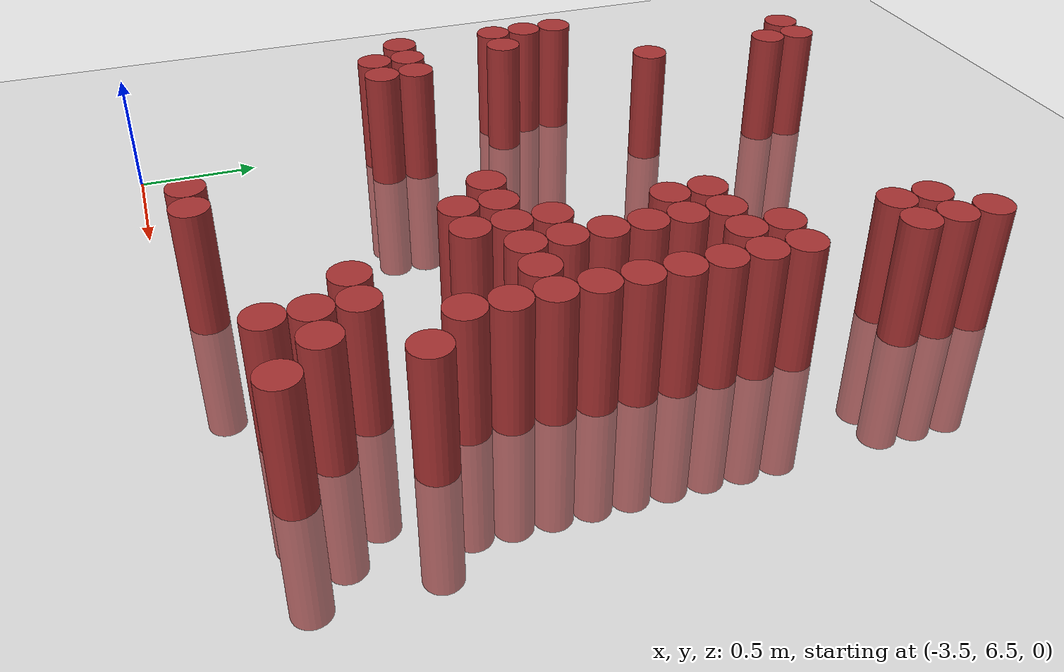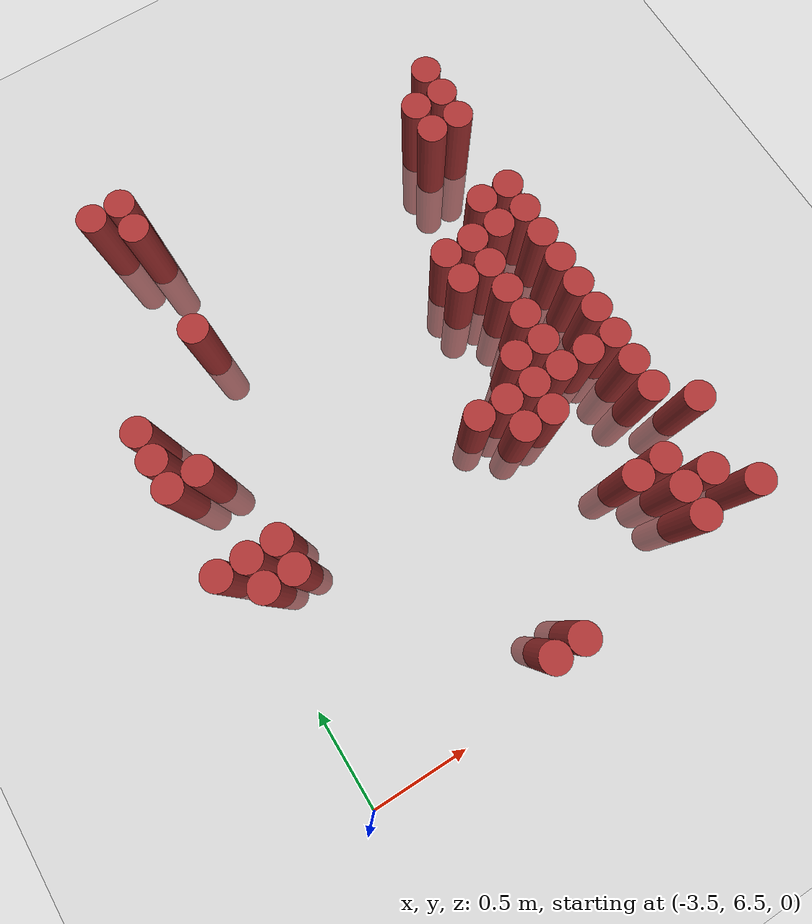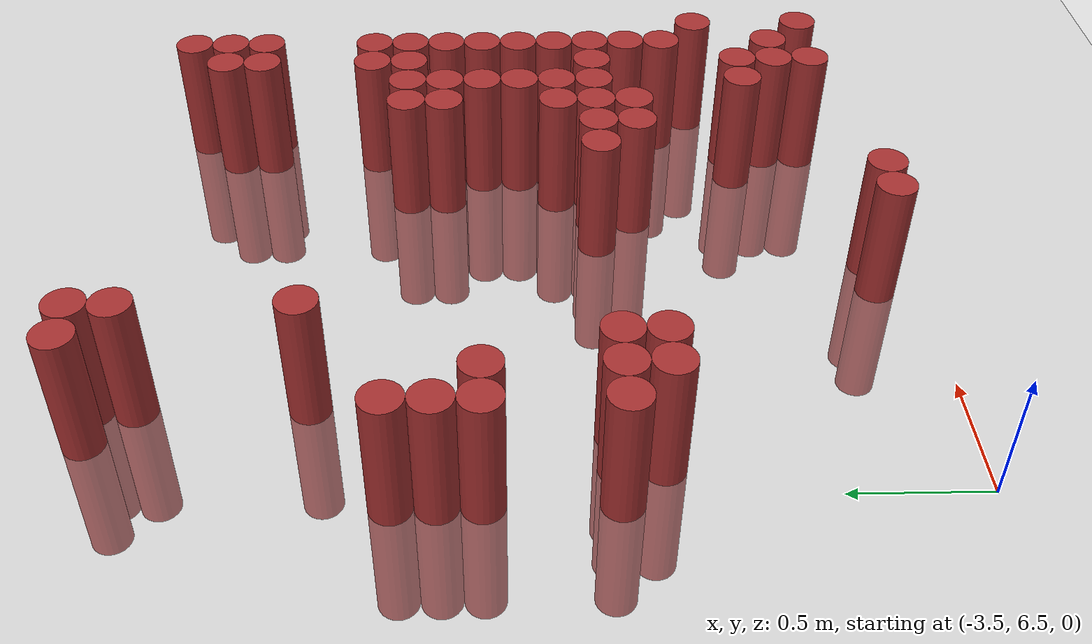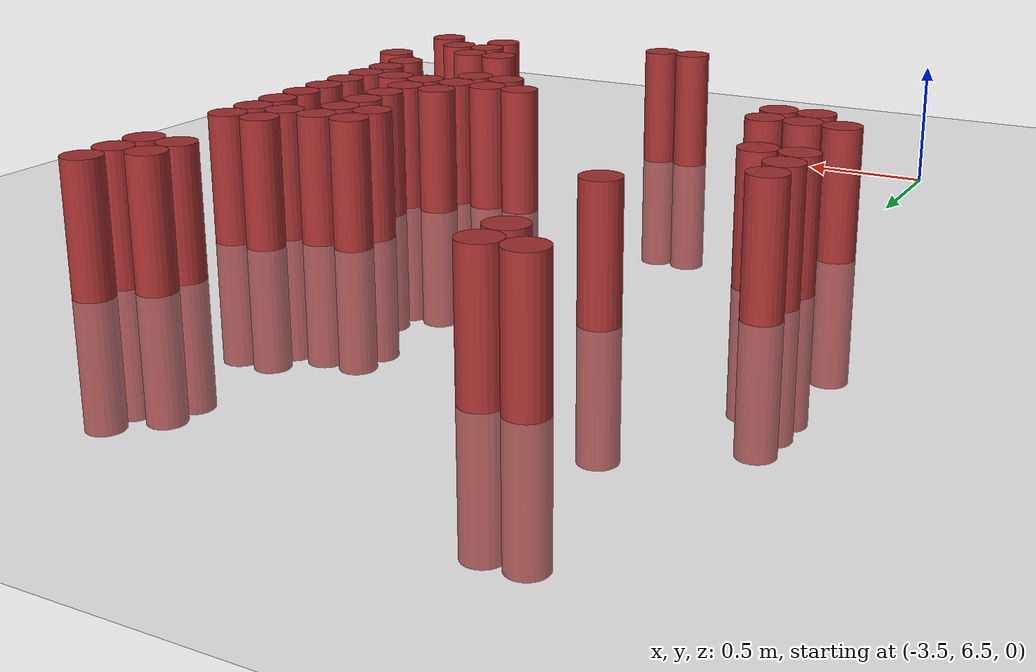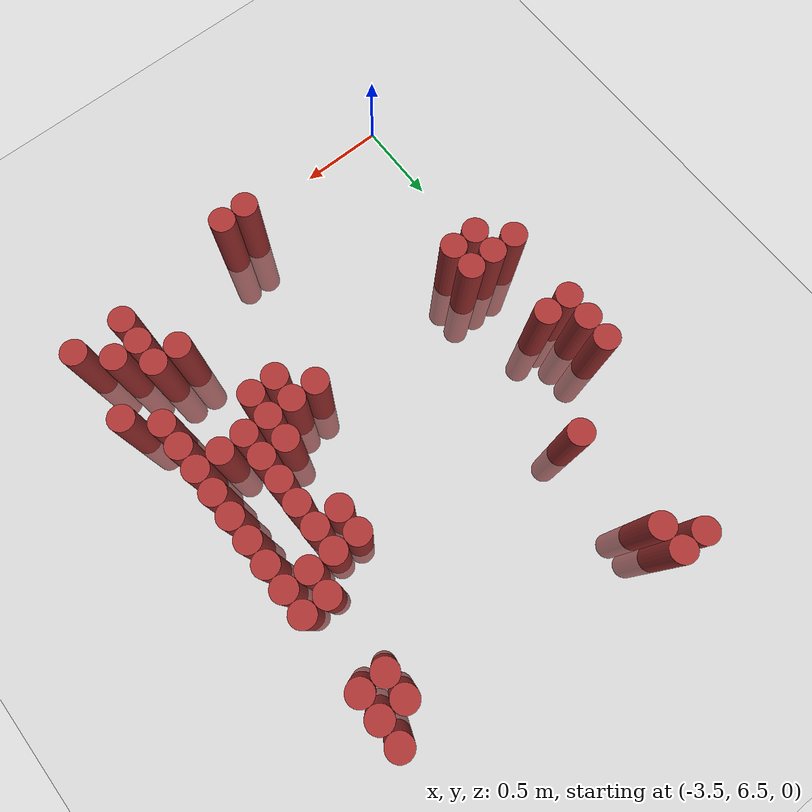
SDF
<sdf version="1.6">
 <world name="default">
  <model name="ground_plane">
   <static>1</static>
   <link name="link">
    <collision name="collision">
     <geometry><plane><normal>0 0 1</normal><size>100 100</size></plane></geometry>
     <surface><friction><ode><mu>100</mu><mu2>50</mu2></ode></friction></surface>
    </collision>
    <visual name="visual">
     <cast_shadows>0</cast_shadows>
     <geometry><plane><normal>0 0 1</normal><size>100 100</size></plane></geometry>
     <material>
      <script><uri>file://media/materials/scripts/gazebo.material</uri><name>Gazebo/Grey</name></script>
     </material>
    </visual>
   </link>
  </model>
  <model name="unit_cylinder_161">
   <static>1</static>
   <pose>-3.525000 7.725000 0.000000 0.000000 0.000000 0.000000</pose>
   <link name="link">
    <inertial>
     <mass>1</mass>
     <inertia><ixx>0.145833</ixx><ixy>0</ixy><ixz>0</ixz><iyy>0.145833</iyy><iyz>0</iyz><izz>0.125</izz></inertia>
    </inertial>
    <collision name="collision">
     <geometry><cylinder><radius>0.075000</radius><length>1</length></cylinder></geometry>
    </collision>
    <visual name="visual">
     <geometry><cylinder><radius>0.075000</radius><length>1</length></cylinder></geometry>
     <material>
      <ambient>0.648000 0.192000 0.192000 1</ambient>
      <diffuse>0.648000 0.192000 0.192000 1</diffuse>
     </material>
     <material>
      <script><name>Gazebo/Grey</name><uri>file://media/materials/scripts/gazebo.material</uri></script>
     </material>
    </visual>
   </link>
  </model>
  <model name="unit_cylinder_162">
   <static>1</static>
   <pose>-3.525000 8.175000 0.000000 0.000000 0.000000 0.000000</pose>
   <link name="link">
    <inertial>
     <mass>1</mass>
     <inertia><ixx>0.145833</ixx><ixy>0</ixy><ixz>0</ixz><iyy>0.145833</iyy><iyz>0</iyz><izz>0.125</izz></inertia>
    </inertial>
    <collision name="collision">
     <geometry><cylinder><radius>0.075000</radius><length>1</length></cylinder></geometry>
    </collision>
    <visual name="visual">
     <geometry><cylinder><radius>0.075000</radius><length>1</length></cylinder></geometry>
     <material>
      <ambient>0.648000 0.192000 0.192000 1</ambient>
      <diffuse>0.648000 0.192000 0.192000 1</diffuse>
     </material>
     <material>
      <script><name>Gazebo/Grey</name><uri>file://media/materials/scripts/gazebo.material</uri></script>
     </material>
    </visual>
   </link>
  </model>
  <model name="unit_cylinder_163">
   <static>1</static>
   <pose>-3.525000 8.325000 0.000000 0.000000 0.000000 0.000000</pose>
   <link name="link">
    <inertial>
     <mass>1</mass>
     <inertia><ixx>0.145833</ixx><ixy>0</ixy><ixz>0</ixz><iyy>0.145833</iyy><iyz>0</iyz><izz>0.125</izz></inertia>
    </inertial>
    <collision name="collision">
     <geometry><cylinder><radius>0.075000</radius><length>1</length></cylinder></geometry>
    </collision>
    <visual name="visual">
     <geometry><cylinder><radius>0.075000</radius><length>1</length></cylinder></geometry>
     <material>
      <ambient>0.648000 0.192000 0.192000 1</ambient>
      <diffuse>0.648000 0.192000 0.192000 1</diffuse>
     </material>
     <material>
      <script><name>Gazebo/Grey</name><uri>file://media/materials/scripts/gazebo.material</uri></script>
     </material>
    </visual>
   </link>
  </model>
  <model name="unit_cylinder_164">
   <static>1</static>
   <pose>-3.525000 8.475000 0.000000 0.000000 0.000000 0.000000</pose>
   <link name="link">
    <inertial>
     <mass>1</mass>
     <inertia><ixx>0.145833</ixx><ixy>0</ixy><ixz>0</ixz><iyy>0.145833</iyy><iyz>0</iyz><izz>0.125</izz></inertia>
    </inertial>
    <collision name="collision">
     <geometry><cylinder><radius>0.075000</radius><length>1</length></cylinder></geometry>
    </collision>
    <visual name="visual">
     <geometry><cylinder><radius>0.075000</radius><length>1</length></cylinder></geometry>
     <material>
      <ambient>0.648000 0.192000 0.192000 1</ambient>
      <diffuse>0.648000 0.192000 0.192000 1</diffuse>
     </material>
     <material>
      <script><name>Gazebo/Grey</name><uri>file://media/materials/scripts/gazebo.material</uri></script>
     </material>
    </visual>
   </link>
  </model>
  <model name="unit_cylinder_165">
   <static>1</static>
   <pose>-3.375000 7.575000 0.000000 0.000000 0.000000 0.000000</pose>
   <link name="link">
    <inertial>
     <mass>1</mass>
     <inertia><ixx>0.145833</ixx><ixy>0</ixy><ixz>0</ixz><iyy>0.145833</iyy><iyz>0</iyz><izz>0.125</izz></inertia>
    </inertial>
    <collision name="collision">
     <geometry><cylinder><radius>0.075000</radius><length>1</length></cylinder></geometry>
    </collision>
    <visual name="visual">
     <geometry><cylinder><radius>0.075000</radius><length>1</length></cylinder></geometry>
     <material>
      <ambient>0.648000 0.192000 0.192000 1</ambient>
      <diffuse>0.648000 0.192000 0.192000 1</diffuse>
     </material>
     <material>
      <script><name>Gazebo/Grey</name><uri>file://media/materials/scripts/gazebo.material</uri></script>
     </material>
    </visual>
   </link>
  </model>
  <model name="unit_cylinder_166">
   <static>1</static>
   <pose>-3.375000 7.725000 0.000000 0.000000 0.000000 0.000000</pose>
   <link name="link">
    <inertial>
     <mass>1</mass>
     <inertia><ixx>0.145833</ixx><ixy>0</ixy><ixz>0</ixz><iyy>0.145833</iyy><iyz>0</iyz><izz>0.125</izz></inertia>
    </inertial>
    <collision name="collision">
     <geometry><cylinder><radius>0.075000</radius><length>1</length></cylinder></geometry>
    </collision>
    <visual name="visual">
     <geometry><cylinder><radius>0.075000</radius><length>1</length></cylinder></geometry>
     <material>
      <ambient>0.648000 0.192000 0.192000 1</ambient>
      <diffuse>0.648000 0.192000 0.192000 1</diffuse>
     </material>
     <material>
      <script><name>Gazebo/Grey</name><uri>file://media/materials/scripts/gazebo.material</uri></script>
     </material>
    </visual>
   </link>
  </model>
  <model name="unit_cylinder_167">
   <static>1</static>
   <pose>-3.375000 8.175000 0.000000 0.000000 0.000000 0.000000</pose>
   <link name="link">
    <inertial>
     <mass>1</mass>
     <inertia><ixx>0.145833</ixx><ixy>0</ixy><ixz>0</ixz><iyy>0.145833</iyy><iyz>0</iyz><izz>0.125</izz></inertia>
    </inertial>
    <collision name="collision">
     <geometry><cylinder><radius>0.075000</radius><length>1</length></cylinder></geometry>
    </collision>
    <visual name="visual">
     <geometry><cylinder><radius>0.075000</radius><length>1</length></cylinder></geometry>
     <material>
      <ambient>0.648000 0.192000 0.192000 1</ambient>
      <diffuse>0.648000 0.192000 0.192000 1</diffuse>
     </material>
     <material>
      <script><name>Gazebo/Grey</name><uri>file://media/materials/scripts/gazebo.material</uri></script>
     </material>
    </visual>
   </link>
  </model>
  <model name="unit_cylinder_169">
   <static>1</static>
   <pose>-3.225000 7.575000 0.000000 0.000000 0.000000 0.000000</pose>
   <link name="link">
    <inertial>
     <mass>1</mass>
     <inertia><ixx>0.145833</ixx><ixy>0</ixy><ixz>0</ixz><iyy>0.145833</iyy><iyz>0</iyz><izz>0.125</izz></inertia>
    </inertial>
    <collision name="collision">
     <geometry><cylinder><radius>0.075000</radius><length>1</length></cylinder></geometry>
    </collision>
    <visual name="visual">
     <geometry><cylinder><radius>0.075000</radius><length>1</length></cylinder></geometry>
     <material>
      <ambient>0.648000 0.192000 0.192000 1</ambient>
      <diffuse>0.648000 0.192000 0.192000 1</diffuse>
     </material>
     <material>
      <script><name>Gazebo/Grey</name><uri>file://media/materials/scripts/gazebo.material</uri></script>
     </material>
    </visual>
   </link>
  </model>
  <model name="unit_cylinder_170">
   <static>1</static>
   <pose>-3.225000 7.725000 0.000000 0.000000 0.000000 0.000000</pose>
   <link name="link">
    <inertial>
     <mass>1</mass>
     <inertia><ixx>0.145833</ixx><ixy>0</ixy><ixz>0</ixz><iyy>0.145833</iyy><iyz>0</iyz><izz>0.125</izz></inertia>
    </inertial>
    <collision name="collision">
     <geometry><cylinder><radius>0.075000</radius><length>1</length></cylinder></geometry>
    </collision>
    <visual name="visual">
     <geometry><cylinder><radius>0.075000</radius><length>1</length></cylinder></geometry>
     <material>
      <ambient>0.648000 0.192000 0.192000 1</ambient>
      <diffuse>0.648000 0.192000 0.192000 1</diffuse>
     </material>
     <material>
      <script><name>Gazebo/Grey</name><uri>file://media/materials/scripts/gazebo.material</uri></script>
     </material>
    </visual>
   </link>
  </model>
  <model name="unit_cylinder_171">
   <static>1</static>
   <pose>-3.225000 9.525000 0.000000 0.000000 0.000000 0.000000</pose>
   <link name="link">
    <inertial>
     <mass>1</mass>
     <inertia><ixx>0.145833</ixx><ixy>0</ixy><ixz>0</ixz><iyy>0.145833</iyy><iyz>0</iyz><izz>0.125</izz></inertia>
    </inertial>
    <collision name="collision">
     <geometry><cylinder><radius>0.075000</radius><length>1</length></cylinder></geometry>
    </collision>
    <visual name="visual">
     <geometry><cylinder><radius>0.075000</radius><length>1</length></cylinder></geometry>
     <material>
      <ambient>0.648000 0.192000 0.192000 1</ambient>
      <diffuse>0.648000 0.192000 0.192000 1</diffuse>
     </material>
     <material>
      <script><name>Gazebo/Grey</name><uri>file://media/materials/scripts/gazebo.material</uri></script>
     </material>
    </visual>
   </link>
  </model>
  <model name="unit_cylinder_174">
   <static>1</static>
   <pose>-3.075000 8.775000 0.000000 0.000000 0.000000 0.000000</pose>
   <link name="link">
    <inertial>
     <mass>1</mass>
     <inertia><ixx>0.145833</ixx><ixy>0</ixy><ixz>0</ixz><iyy>0.145833</iyy><iyz>0</iyz><izz>0.125</izz></inertia>
    </inertial>
    <collision name="collision">
     <geometry><cylinder><radius>0.075000</radius><length>1</length></cylinder></geometry>
    </collision>
    <visual name="visual">
     <geometry><cylinder><radius>0.075000</radius><length>1</length></cylinder></geometry>
     <material>
      <ambient>0.648000 0.192000 0.192000 1</ambient>
      <diffuse>0.648000 0.192000 0.192000 1</diffuse>
     </material>
     <material>
      <script><name>Gazebo/Grey</name><uri>file://media/materials/scripts/gazebo.material</uri></script>
     </material>
    </visual>
   </link>
  </model>
  <model name="unit_cylinder_175">
   <static>1</static>
   <pose>-3.075000 9.375000 0.000000 0.000000 0.000000 0.000000</pose>
   <link name="link">
    <inertial>
     <mass>1</mass>
     <inertia><ixx>0.145833</ixx><ixy>0</ixy><ixz>0</ixz><iyy>0.145833</iyy><iyz>0</iyz><izz>0.125</izz></inertia>
    </inertial>
    <collision name="collision">
     <geometry><cylinder><radius>0.075000</radius><length>1</length></cylinder></geometry>
    </collision>
    <visual name="visual">
     <geometry><cylinder><radius>0.075000</radius><length>1</length></cylinder></geometry>
     <material>
      <ambient>0.648000 0.192000 0.192000 1</ambient>
      <diffuse>0.648000 0.192000 0.192000 1</diffuse>
     </material>
     <material>
      <script><name>Gazebo/Grey</name><uri>file://media/materials/scripts/gazebo.material</uri></script>
     </material>
    </visual>
   </link>
  </model>
  <model name="unit_cylinder_176">
   <static>1</static>
   <pose>-3.075000 9.525000 0.000000 0.000000 0.000000 0.000000</pose>
   <link name="link">
    <inertial>
     <mass>1</mass>
     <inertia><ixx>0.145833</ixx><ixy>0</ixy><ixz>0</ixz><iyy>0.145833</iyy><iyz>0</iyz><izz>0.125</izz></inertia>
    </inertial>
    <collision name="collision">
     <geometry><cylinder><radius>0.075000</radius><length>1</length></cylinder></geometry>
    </collision>
    <visual name="visual">
     <geometry><cylinder><radius>0.075000</radius><length>1</length></cylinder></geometry>
     <material>
      <ambient>0.648000 0.192000 0.192000 1</ambient>
      <diffuse>0.648000 0.192000 0.192000 1</diffuse>
     </material>
     <material>
      <script><name>Gazebo/Grey</name><uri>file://media/materials/scripts/gazebo.material</uri></script>
     </material>
    </visual>
   </link>
  </model>
  <model name="unit_cylinder_188">
   <static>1</static>
   <pose>-2.475000 6.675000 0.000000 0.000000 0.000000 0.000000</pose>
   <link name="link">
    <inertial>
     <mass>1</mass>
     <inertia><ixx>0.145833</ixx><ixy>0</ixy><ixz>0</ixz><iyy>0.145833</iyy><iyz>0</iyz><izz>0.125</izz></inertia>
    </inertial>
    <collision name="collision">
     <geometry><cylinder><radius>0.075000</radius><length>1</length></cylinder></geometry>
    </collision>
    <visual name="visual">
     <geometry><cylinder><radius>0.075000</radius><length>1</length></cylinder></geometry>
     <material>
      <ambient>0.648000 0.192000 0.192000 1</ambient>
      <diffuse>0.648000 0.192000 0.192000 1</diffuse>
     </material>
     <material>
      <script><name>Gazebo/Grey</name><uri>file://media/materials/scripts/gazebo.material</uri></script>
     </material>
    </visual>
   </link>
  </model>
  <model name="unit_cylinder_189">
   <static>1</static>
   <pose>-2.325000 6.675000 0.000000 0.000000 0.000000 0.000000</pose>
   <link name="link">
    <inertial>
     <mass>1</mass>
     <inertia><ixx>0.145833</ixx><ixy>0</ixy><ixz>0</ixz><iyy>0.145833</iyy><iyz>0</iyz><izz>0.125</izz></inertia>
    </inertial>
    <collision name="collision">
     <geometry><cylinder><radius>0.075000</radius><length>1</length></cylinder></geometry>
    </collision>
    <visual name="visual">
     <geometry><cylinder><radius>0.075000</radius><length>1</length></cylinder></geometry>
     <material>
      <ambient>0.648000 0.192000 0.192000 1</ambient>
      <diffuse>0.648000 0.192000 0.192000 1</diffuse>
     </material>
     <material>
      <script><name>Gazebo/Grey</name><uri>file://media/materials/scripts/gazebo.material</uri></script>
     </material>
    </visual>
   </link>
  </model>
  <model name="unit_cylinder_190">
   <static>1</static>
   <pose>-2.175000 7.725000 0.000000 0.000000 0.000000 0.000000</pose>
   <link name="link">
    <inertial>
     <mass>1</mass>
     <inertia><ixx>0.145833</ixx><ixy>0</ixy><ixz>0</ixz><iyy>0.145833</iyy><iyz>0</iyz><izz>0.125</izz></inertia>
    </inertial>
    <collision name="collision">
     <geometry><cylinder><radius>0.075000</radius><length>1</length></cylinder></geometry>
    </collision>
    <visual name="visual">
     <geometry><cylinder><radius>0.075000</radius><length>1</length></cylinder></geometry>
     <material>
      <ambient>0.648000 0.192000 0.192000 1</ambient>
      <diffuse>0.648000 0.192000 0.192000 1</diffuse>
     </material>
     <material>
      <script><name>Gazebo/Grey</name><uri>file://media/materials/scripts/gazebo.material</uri></script>
     </material>
    </visual>
   </link>
  </model>
  <model name="unit_cylinder_192">
   <static>1</static>
   <pose>-2.025000 7.575000 0.000000 0.000000 0.000000 0.000000</pose>
   <link name="link">
    <inertial>
     <mass>1</mass>
     <inertia><ixx>0.145833</ixx><ixy>0</ixy><ixz>0</ixz><iyy>0.145833</iyy><iyz>0</iyz><izz>0.125</izz></inertia>
    </inertial>
    <collision name="collision">
     <geometry><cylinder><radius>0.075000</radius><length>1</length></cylinder></geometry>
    </collision>
    <visual name="visual">
     <geometry><cylinder><radius>0.075000</radius><length>1</length></cylinder></geometry>
     <material>
      <ambient>0.648000 0.192000 0.192000 1</ambient>
      <diffuse>0.648000 0.192000 0.192000 1</diffuse>
     </material>
     <material>
      <script><name>Gazebo/Grey</name><uri>file://media/materials/scripts/gazebo.material</uri></script>
     </material>
    </visual>
   </link>
  </model>
  <model name="unit_cylinder_193">
   <static>1</static>
   <pose>-2.025000 7.725000 0.000000 0.000000 0.000000 0.000000</pose>
   <link name="link">
    <inertial>
     <mass>1</mass>
     <inertia><ixx>0.145833</ixx><ixy>0</ixy><ixz>0</ixz><iyy>0.145833</iyy><iyz>0</iyz><izz>0.125</izz></inertia>
    </inertial>
    <collision name="collision">
     <geometry><cylinder><radius>0.075000</radius><length>1</length></cylinder></geometry>
    </collision>
    <visual name="visual">
     <geometry><cylinder><radius>0.075000</radius><length>1</length></cylinder></geometry>
     <material>
      <ambient>0.648000 0.192000 0.192000 1</ambient>
      <diffuse>0.648000 0.192000 0.192000 1</diffuse>
     </material>
     <material>
      <script><name>Gazebo/Grey</name><uri>file://media/materials/scripts/gazebo.material</uri></script>
     </material>
    </visual>
   </link>
  </model>
  <model name="unit_cylinder_196">
   <static>1</static>
   <pose>-1.875000 7.575000 0.000000 0.000000 0.000000 0.000000</pose>
   <link name="link">
    <inertial>
     <mass>1</mass>
     <inertia><ixx>0.145833</ixx><ixy>0</ixy><ixz>0</ixz><iyy>0.145833</iyy><iyz>0</iyz><izz>0.125</izz></inertia>
    </inertial>
    <collision name="collision">
     <geometry><cylinder><radius>0.075000</radius><length>1</length></cylinder></geometry>
    </collision>
    <visual name="visual">
     <geometry><cylinder><radius>0.075000</radius><length>1</length></cylinder></geometry>
     <material>
      <ambient>0.648000 0.192000 0.192000 1</ambient>
      <diffuse>0.648000 0.192000 0.192000 1</diffuse>
     </material>
     <material>
      <script><name>Gazebo/Grey</name><uri>file://media/materials/scripts/gazebo.material</uri></script>
     </material>
    </visual>
   </link>
  </model>
  <model name="unit_cylinder_197">
   <static>1</static>
   <pose>-1.875000 7.725000 0.000000 0.000000 0.000000 0.000000</pose>
   <link name="link">
    <inertial>
     <mass>1</mass>
     <inertia><ixx>0.145833</ixx><ixy>0</ixy><ixz>0</ixz><iyy>0.145833</iyy><iyz>0</iyz><izz>0.125</izz></inertia>
    </inertial>
    <collision name="collision">
     <geometry><cylinder><radius>0.075000</radius><length>1</length></cylinder></geometry>
    </collision>
    <visual name="visual">
     <geometry><cylinder><radius>0.075000</radius><length>1</length></cylinder></geometry>
     <material>
      <ambient>0.648000 0.192000 0.192000 1</ambient>
      <diffuse>0.648000 0.192000 0.192000 1</diffuse>
     </material>
     <material>
      <script><name>Gazebo/Grey</name><uri>file://media/materials/scripts/gazebo.material</uri></script>
     </material>
    </visual>
   </link>
  </model>
  <model name="unit_cylinder_198">
   <static>1</static>
   <pose>-1.875000 7.875000 0.000000 0.000000 0.000000 0.000000</pose>
   <link name="link">
    <inertial>
     <mass>1</mass>
     <inertia><ixx>0.145833</ixx><ixy>0</ixy><ixz>0</ixz><iyy>0.145833</iyy><iyz>0</iyz><izz>0.125</izz></inertia>
    </inertial>
    <collision name="collision">
     <geometry><cylinder><radius>0.075000</radius><length>1</length></cylinder></geometry>
    </collision>
    <visual name="visual">
     <geometry><cylinder><radius>0.075000</radius><length>1</length></cylinder></geometry>
     <material>
      <ambient>0.648000 0.192000 0.192000 1</ambient>
      <diffuse>0.648000 0.192000 0.192000 1</diffuse>
     </material>
     <material>
      <script><name>Gazebo/Grey</name><uri>file://media/materials/scripts/gazebo.material</uri></script>
     </material>
    </visual>
   </link>
  </model>
  <model name="unit_cylinder_199">
   <static>1</static>
   <pose>-1.875000 8.325000 0.000000 0.000000 0.000000 0.000000</pose>
   <link name="link">
    <inertial>
     <mass>1</mass>
     <inertia><ixx>0.145833</ixx><ixy>0</ixy><ixz>0</ixz><iyy>0.145833</iyy><iyz>0</iyz><izz>0.125</izz></inertia>
    </inertial>
    <collision name="collision">
     <geometry><cylinder><radius>0.075000</radius><length>1</length></cylinder></geometry>
    </collision>
    <visual name="visual">
     <geometry><cylinder><radius>0.075000</radius><length>1</length></cylinder></geometry>
     <material>
      <ambient>0.648000 0.192000 0.192000 1</ambient>
      <diffuse>0.648000 0.192000 0.192000 1</diffuse>
     </material>
     <material>
      <script><name>Gazebo/Grey</name><uri>file://media/materials/scripts/gazebo.material</uri></script>
     </material>
    </visual>
   </link>
  </model>
  <model name="unit_cylinder_200">
   <static>1</static>
   <pose>-1.875000 8.475000 0.000000 0.000000 0.000000 0.000000</pose>
   <link name="link">
    <inertial>
     <mass>1</mass>
     <inertia><ixx>0.145833</ixx><ixy>0</ixy><ixz>0</ixz><iyy>0.145833</iyy><iyz>0</iyz><izz>0.125</izz></inertia>
    </inertial>
    <collision name="collision">
     <geometry><cylinder><radius>0.075000</radius><length>1</length></cylinder></geometry>
    </collision>
    <visual name="visual">
     <geometry><cylinder><radius>0.075000</radius><length>1</length></cylinder></geometry>
     <material>
      <ambient>0.648000 0.192000 0.192000 1</ambient>
      <diffuse>0.648000 0.192000 0.192000 1</diffuse>
     </material>
     <material>
      <script><name>Gazebo/Grey</name><uri>file://media/materials/scripts/gazebo.material</uri></script>
     </material>
    </visual>
   </link>
  </model>
  <model name="unit_cylinder_202">
   <static>1</static>
   <pose>-1.725000 7.125000 0.000000 0.000000 0.000000 0.000000</pose>
   <link name="link">
    <inertial>
     <mass>1</mass>
     <inertia><ixx>0.145833</ixx><ixy>0</ixy><ixz>0</ixz><iyy>0.145833</iyy><iyz>0</iyz><izz>0.125</izz></inertia>
    </inertial>
    <collision name="collision">
     <geometry><cylinder><radius>0.075000</radius><length>1</length></cylinder></geometry>
    </collision>
    <visual name="visual">
     <geometry><cylinder><radius>0.075000</radius><length>1</length></cylinder></geometry>
     <material>
      <ambient>0.648000 0.192000 0.192000 1</ambient>
      <diffuse>0.648000 0.192000 0.192000 1</diffuse>
     </material>
     <material>
      <script><name>Gazebo/Grey</name><uri>file://media/materials/scripts/gazebo.material</uri></script>
     </material>
    </visual>
   </link>
  </model>
  <model name="unit_cylinder_203">
   <static>1</static>
   <pose>-1.725000 7.725000 0.000000 0.000000 0.000000 0.000000</pose>
   <link name="link">
    <inertial>
     <mass>1</mass>
     <inertia><ixx>0.145833</ixx><ixy>0</ixy><ixz>0</ixz><iyy>0.145833</iyy><iyz>0</iyz><izz>0.125</izz></inertia>
    </inertial>
    <collision name="collision">
     <geometry><cylinder><radius>0.075000</radius><length>1</length></cylinder></geometry>
    </collision>
    <visual name="visual">
     <geometry><cylinder><radius>0.075000</radius><length>1</length></cylinder></geometry>
     <material>
      <ambient>0.648000 0.192000 0.192000 1</ambient>
      <diffuse>0.648000 0.192000 0.192000 1</diffuse>
     </material>
     <material>
      <script><name>Gazebo/Grey</name><uri>file://media/materials/scripts/gazebo.material</uri></script>
     </material>
    </visual>
   </link>
  </model>
  <model name="unit_cylinder_204">
   <static>1</static>
   <pose>-1.725000 7.875000 0.000000 0.000000 0.000000 0.000000</pose>
   <link name="link">
    <inertial>
     <mass>1</mass>
     <inertia><ixx>0.145833</ixx><ixy>0</ixy><ixz>0</ixz><iyy>0.145833</iyy><iyz>0</iyz><izz>0.125</izz></inertia>
    </inertial>
    <collision name="collision">
     <geometry><cylinder><radius>0.075000</radius><length>1</length></cylinder></geometry>
    </collision>
    <visual name="visual">
     <geometry><cylinder><radius>0.075000</radius><length>1</length></cylinder></geometry>
     <material>
      <ambient>0.648000 0.192000 0.192000 1</ambient>
      <diffuse>0.648000 0.192000 0.192000 1</diffuse>
     </material>
     <material>
      <script><name>Gazebo/Grey</name><uri>file://media/materials/scripts/gazebo.material</uri></script>
     </material>
    </visual>
   </link>
  </model>
  <model name="unit_cylinder_205">
   <static>1</static>
   <pose>-1.725000 8.025000 0.000000 0.000000 0.000000 0.000000</pose>
   <link name="link">
    <inertial>
     <mass>1</mass>
     <inertia><ixx>0.145833</ixx><ixy>0</ixy><ixz>0</ixz><iyy>0.145833</iyy><iyz>0</iyz><izz>0.125</izz></inertia>
    </inertial>
    <collision name="collision">
     <geometry><cylinder><radius>0.075000</radius><length>1</length></cylinder></geometry>
    </collision>
    <visual name="visual">
     <geometry><cylinder><radius>0.075000</radius><length>1</length></cylinder></geometry>
     <material>
      <ambient>0.648000 0.192000 0.192000 1</ambient>
      <diffuse>0.648000 0.192000 0.192000 1</diffuse>
     </material>
     <material>
      <script><name>Gazebo/Grey</name><uri>file://media/materials/scripts/gazebo.material</uri></script>
     </material>
    </visual>
   </link>
  </model>
  <model name="unit_cylinder_206">
   <static>1</static>
   <pose>-1.725000 8.175000 0.000000 0.000000 0.000000 0.000000</pose>
   <link name="link">
    <inertial>
     <mass>1</mass>
     <inertia><ixx>0.145833</ixx><ixy>0</ixy><ixz>0</ixz><iyy>0.145833</iyy><iyz>0</iyz><izz>0.125</izz></inertia>
    </inertial>
    <collision name="collision">
     <geometry><cylinder><radius>0.075000</radius><length>1</length></cylinder></geometry>
    </collision>
    <visual name="visual">
     <geometry><cylinder><radius>0.075000</radius><length>1</length></cylinder></geometry>
     <material>
      <ambient>0.648000 0.192000 0.192000 1</ambient>
      <diffuse>0.648000 0.192000 0.192000 1</diffuse>
     </material>
     <material>
      <script><name>Gazebo/Grey</name><uri>file://media/materials/scripts/gazebo.material</uri></script>
     </material>
    </visual>
   </link>
  </model>
  <model name="unit_cylinder_207">
   <static>1</static>
   <pose>-1.725000 8.325000 0.000000 0.000000 0.000000 0.000000</pose>
   <link name="link">
    <inertial>
     <mass>1</mass>
     <inertia><ixx>0.145833</ixx><ixy>0</ixy><ixz>0</ixz><iyy>0.145833</iyy><iyz>0</iyz><izz>0.125</izz></inertia>
    </inertial>
    <collision name="collision">
     <geometry><cylinder><radius>0.075000</radius><length>1</length></cylinder></geometry>
    </collision>
    <visual name="visual">
     <geometry><cylinder><radius>0.075000</radius><length>1</length></cylinder></geometry>
     <material>
      <ambient>0.648000 0.192000 0.192000 1</ambient>
      <diffuse>0.648000 0.192000 0.192000 1</diffuse>
     </material>
     <material>
      <script><name>Gazebo/Grey</name><uri>file://media/materials/scripts/gazebo.material</uri></script>
     </material>
    </visual>
   </link>
  </model>
  <model name="unit_cylinder_208">
   <static>1</static>
   <pose>-1.725000 8.475000 0.000000 0.000000 0.000000 0.000000</pose>
   <link name="link">
    <inertial>
     <mass>1</mass>
     <inertia><ixx>0.145833</ixx><ixy>0</ixy><ixz>0</ixz><iyy>0.145833</iyy><iyz>0</iyz><izz>0.125</izz></inertia>
    </inertial>
    <collision name="collision">
     <geometry><cylinder><radius>0.075000</radius><length>1</length></cylinder></geometry>
    </collision>
    <visual name="visual">
     <geometry><cylinder><radius>0.075000</radius><length>1</length></cylinder></geometry>
     <material>
      <ambient>0.648000 0.192000 0.192000 1</ambient>
      <diffuse>0.648000 0.192000 0.192000 1</diffuse>
     </material>
     <material>
      <script><name>Gazebo/Grey</name><uri>file://media/materials/scripts/gazebo.material</uri></script>
     </material>
    </visual>
   </link>
  </model>
  <model name="unit_cylinder_215">
   <static>1</static>
   <pose>-1.575000 6.825000 0.000000 0.000000 0.000000 0.000000</pose>
   <link name="link">
    <inertial>
     <mass>1</mass>
     <inertia><ixx>0.145833</ixx><ixy>0</ixy><ixz>0</ixz><iyy>0.145833</iyy><iyz>0</iyz><izz>0.125</izz></inertia>
    </inertial>
    <collision name="collision">
     <geometry><cylinder><radius>0.075000</radius><length>1</length></cylinder></geometry>
    </collision>
    <visual name="visual">
     <geometry><cylinder><radius>0.075000</radius><length>1</length></cylinder></geometry>
     <material>
      <ambient>0.648000 0.192000 0.192000 1</ambient>
      <diffuse>0.648000 0.192000 0.192000 1</diffuse>
     </material>
     <material>
      <script><name>Gazebo/Grey</name><uri>file://media/materials/scripts/gazebo.material</uri></script>
     </material>
    </visual>
   </link>
  </model>
  <model name="unit_cylinder_216">
   <static>1</static>
   <pose>-1.575000 6.975000 0.000000 0.000000 0.000000 0.000000</pose>
   <link name="link">
    <inertial>
     <mass>1</mass>
     <inertia><ixx>0.145833</ixx><ixy>0</ixy><ixz>0</ixz><iyy>0.145833</iyy><iyz>0</iyz><izz>0.125</izz></inertia>
    </inertial>
    <collision name="collision">
     <geometry><cylinder><radius>0.075000</radius><length>1</length></cylinder></geometry>
    </collision>
    <visual name="visual">
     <geometry><cylinder><radius>0.075000</radius><length>1</length></cylinder></geometry>
     <material>
      <ambient>0.648000 0.192000 0.192000 1</ambient>
      <diffuse>0.648000 0.192000 0.192000 1</diffuse>
     </material>
     <material>
      <script><name>Gazebo/Grey</name><uri>file://media/materials/scripts/gazebo.material</uri></script>
     </material>
    </visual>
   </link>
  </model>
  <model name="unit_cylinder_217">
   <static>1</static>
   <pose>-1.575000 7.125000 0.000000 0.000000 0.000000 0.000000</pose>
   <link name="link">
    <inertial>
     <mass>1</mass>
     <inertia><ixx>0.145833</ixx><ixy>0</ixy><ixz>0</ixz><iyy>0.145833</iyy><iyz>0</iyz><izz>0.125</izz></inertia>
    </inertial>
    <collision name="collision">
     <geometry><cylinder><radius>0.075000</radius><length>1</length></cylinder></geometry>
    </collision>
    <visual name="visual">
     <geometry><cylinder><radius>0.075000</radius><length>1</length></cylinder></geometry>
     <material>
      <ambient>0.648000 0.192000 0.192000 1</ambient>
      <diffuse>0.648000 0.192000 0.192000 1</diffuse>
     </material>
     <material>
      <script><name>Gazebo/Grey</name><uri>file://media/materials/scripts/gazebo.material</uri></script>
     </material>
    </visual>
   </link>
  </model>
  <model name="unit_cylinder_218">
   <static>1</static>
   <pose>-1.575000 7.725000 0.000000 0.000000 0.000000 0.000000</pose>
   <link name="link">
    <inertial>
     <mass>1</mass>
     <inertia><ixx>0.145833</ixx><ixy>0</ixy><ixz>0</ixz><iyy>0.145833</iyy><iyz>0</iyz><izz>0.125</izz></inertia>
    </inertial>
    <collision name="collision">
     <geometry><cylinder><radius>0.075000</radius><length>1</length></cylinder></geometry>
    </collision>
    <visual name="visual">
     <geometry><cylinder><radius>0.075000</radius><length>1</length></cylinder></geometry>
     <material>
      <ambient>0.648000 0.192000 0.192000 1</ambient>
      <diffuse>0.648000 0.192000 0.192000 1</diffuse>
     </material>
     <material>
      <script><name>Gazebo/Grey</name><uri>file://media/materials/scripts/gazebo.material</uri></script>
     </material>
    </visual>
   </link>
  </model>
  <model name="unit_cylinder_219">
   <static>1</static>
   <pose>-1.575000 8.475000 0.000000 0.000000 0.000000 0.000000</pose>
   <link name="link">
    <inertial>
     <mass>1</mass>
     <inertia><ixx>0.145833</ixx><ixy>0</ixy><ixz>0</ixz><iyy>0.145833</iyy><iyz>0</iyz><izz>0.125</izz></inertia>
    </inertial>
    <collision name="collision">
     <geometry><cylinder><radius>0.075000</radius><length>1</length></cylinder></geometry>
    </collision>
    <visual name="visual">
     <geometry><cylinder><radius>0.075000</radius><length>1</length></cylinder></geometry>
     <material>
      <ambient>0.648000 0.192000 0.192000 1</ambient>
      <diffuse>0.648000 0.192000 0.192000 1</diffuse>
     </material>
     <material>
      <script><name>Gazebo/Grey</name><uri>file://media/materials/scripts/gazebo.material</uri></script>
     </material>
    </visual>
   </link>
  </model>
  <model name="unit_cylinder_220">
   <static>1</static>
   <pose>-1.575000 8.625000 0.000000 0.000000 0.000000 0.000000</pose>
   <link name="link">
    <inertial>
     <mass>1</mass>
     <inertia><ixx>0.145833</ixx><ixy>0</ixy><ixz>0</ixz><iyy>0.145833</iyy><iyz>0</iyz><izz>0.125</izz></inertia>
    </inertial>
    <collision name="collision">
     <geometry><cylinder><radius>0.075000</radius><length>1</length></cylinder></geometry>
    </collision>
    <visual name="visual">
     <geometry><cylinder><radius>0.075000</radius><length>1</length></cylinder></geometry>
     <material>
      <ambient>0.648000 0.192000 0.192000 1</ambient>
      <diffuse>0.648000 0.192000 0.192000 1</diffuse>
     </material>
     <material>
      <script><name>Gazebo/Grey</name><uri>file://media/materials/scripts/gazebo.material</uri></script>
     </material>
    </visual>
   </link>
  </model>
  <model name="unit_cylinder_221">
   <static>1</static>
   <pose>-1.575000 9.075000 0.000000 0.000000 0.000000 0.000000</pose>
   <link name="link">
    <inertial>
     <mass>1</mass>
     <inertia><ixx>0.145833</ixx><ixy>0</ixy><ixz>0</ixz><iyy>0.145833</iyy><iyz>0</iyz><izz>0.125</izz></inertia>
    </inertial>
    <collision name="collision">
     <geometry><cylinder><radius>0.075000</radius><length>1</length></cylinder></geometry>
    </collision>
    <visual name="visual">
     <geometry><cylinder><radius>0.075000</radius><length>1</length></cylinder></geometry>
     <material>
      <ambient>0.648000 0.192000 0.192000 1</ambient>
      <diffuse>0.648000 0.192000 0.192000 1</diffuse>
     </material>
     <material>
      <script><name>Gazebo/Grey</name><uri>file://media/materials/scripts/gazebo.material</uri></script>
     </material>
    </visual>
   </link>
  </model>
  <model name="unit_cylinder_222">
   <static>1</static>
   <pose>-1.575000 9.225000 0.000000 0.000000 0.000000 0.000000</pose>
   <link name="link">
    <inertial>
     <mass>1</mass>
     <inertia><ixx>0.145833</ixx><ixy>0</ixy><ixz>0</ixz><iyy>0.145833</iyy><iyz>0</iyz><izz>0.125</izz></inertia>
    </inertial>
    <collision name="collision">
     <geometry><cylinder><radius>0.075000</radius><length>1</length></cylinder></geometry>
    </collision>
    <visual name="visual">
     <geometry><cylinder><radius>0.075000</radius><length>1</length></cylinder></geometry>
     <material>
      <ambient>0.648000 0.192000 0.192000 1</ambient>
      <diffuse>0.648000 0.192000 0.192000 1</diffuse>
     </material>
     <material>
      <script><name>Gazebo/Grey</name><uri>file://media/materials/scripts/gazebo.material</uri></script>
     </material>
    </visual>
   </link>
  </model>
  <model name="unit_cylinder_229">
   <static>1</static>
   <pose>-1.425000 6.975000 0.000000 0.000000 0.000000 0.000000</pose>
   <link name="link">
    <inertial>
     <mass>1</mass>
     <inertia><ixx>0.145833</ixx><ixy>0</ixy><ixz>0</ixz><iyy>0.145833</iyy><iyz>0</iyz><izz>0.125</izz></inertia>
    </inertial>
    <collision name="collision">
     <geometry><cylinder><radius>0.075000</radius><length>1</length></cylinder></geometry>
    </collision>
    <visual name="visual">
     <geometry><cylinder><radius>0.075000</radius><length>1</length></cylinder></geometry>
     <material>
      <ambient>0.648000 0.192000 0.192000 1</ambient>
      <diffuse>0.648000 0.192000 0.192000 1</diffuse>
     </material>
     <material>
      <script><name>Gazebo/Grey</name><uri>file://media/materials/scripts/gazebo.material</uri></script>
     </material>
    </visual>
   </link>
  </model>
  <model name="unit_cylinder_230">
   <static>1</static>
   <pose>-1.425000 7.425000 0.000000 0.000000 0.000000 0.000000</pose>
   <link name="link">
    <inertial>
     <mass>1</mass>
     <inertia><ixx>0.145833</ixx><ixy>0</ixy><ixz>0</ixz><iyy>0.145833</iyy><iyz>0</iyz><izz>0.125</izz></inertia>
    </inertial>
    <collision name="collision">
     <geometry><cylinder><radius>0.075000</radius><length>1</length></cylinder></geometry>
    </collision>
    <visual name="visual">
     <geometry><cylinder><radius>0.075000</radius><length>1</length></cylinder></geometry>
     <material>
      <ambient>0.648000 0.192000 0.192000 1</ambient>
      <diffuse>0.648000 0.192000 0.192000 1</diffuse>
     </material>
     <material>
      <script><name>Gazebo/Grey</name><uri>file://media/materials/scripts/gazebo.material</uri></script>
     </material>
    </visual>
   </link>
  </model>
  <model name="unit_cylinder_231">
   <static>1</static>
   <pose>-1.425000 7.575000 0.000000 0.000000 0.000000 0.000000</pose>
   <link name="link">
    <inertial>
     <mass>1</mass>
     <inertia><ixx>0.145833</ixx><ixy>0</ixy><ixz>0</ixz><iyy>0.145833</iyy><iyz>0</iyz><izz>0.125</izz></inertia>
    </inertial>
    <collision name="collision">
     <geometry><cylinder><radius>0.075000</radius><length>1</length></cylinder></geometry>
    </collision>
    <visual name="visual">
     <geometry><cylinder><radius>0.075000</radius><length>1</length></cylinder></geometry>
     <material>
      <ambient>0.648000 0.192000 0.192000 1</ambient>
      <diffuse>0.648000 0.192000 0.192000 1</diffuse>
     </material>
     <material>
      <script><name>Gazebo/Grey</name><uri>file://media/materials/scripts/gazebo.material</uri></script>
     </material>
    </visual>
   </link>
  </model>
  <model name="unit_cylinder_232">
   <static>1</static>
   <pose>-1.425000 7.725000 0.000000 0.000000 0.000000 0.000000</pose>
   <link name="link">
    <inertial>
     <mass>1</mass>
     <inertia><ixx>0.145833</ixx><ixy>0</ixy><ixz>0</ixz><iyy>0.145833</iyy><iyz>0</iyz><izz>0.125</izz></inertia>
    </inertial>
    <collision name="collision">
     <geometry><cylinder><radius>0.075000</radius><length>1</length></cylinder></geometry>
    </collision>
    <visual name="visual">
     <geometry><cylinder><radius>0.075000</radius><length>1</length></cylinder></geometry>
     <material>
      <ambient>0.648000 0.192000 0.192000 1</ambient>
      <diffuse>0.648000 0.192000 0.192000 1</diffuse>
     </material>
     <material>
      <script><name>Gazebo/Grey</name><uri>file://media/materials/scripts/gazebo.material</uri></script>
     </material>
    </visual>
   </link>
  </model>
  <model name="unit_cylinder_233">
   <static>1</static>
   <pose>-1.425000 7.875000 0.000000 0.000000 0.000000 0.000000</pose>
   <link name="link">
    <inertial>
     <mass>1</mass>
     <inertia><ixx>0.145833</ixx><ixy>0</ixy><ixz>0</ixz><iyy>0.145833</iyy><iyz>0</iyz><izz>0.125</izz></inertia>
    </inertial>
    <collision name="collision">
     <geometry><cylinder><radius>0.075000</radius><length>1</length></cylinder></geometry>
    </collision>
    <visual name="visual">
     <geometry><cylinder><radius>0.075000</radius><length>1</length></cylinder></geometry>
     <material>
      <ambient>0.648000 0.192000 0.192000 1</ambient>
      <diffuse>0.648000 0.192000 0.192000 1</diffuse>
     </material>
     <material>
      <script><name>Gazebo/Grey</name><uri>file://media/materials/scripts/gazebo.material</uri></script>
     </material>
    </visual>
   </link>
  </model>
  <model name="unit_cylinder_234">
   <static>1</static>
   <pose>-1.425000 8.025000 0.000000 0.000000 0.000000 0.000000</pose>
   <link name="link">
    <inertial>
     <mass>1</mass>
     <inertia><ixx>0.145833</ixx><ixy>0</ixy><ixz>0</ixz><iyy>0.145833</iyy><iyz>0</iyz><izz>0.125</izz></inertia>
    </inertial>
    <collision name="collision">
     <geometry><cylinder><radius>0.075000</radius><length>1</length></cylinder></geometry>
    </collision>
    <visual name="visual">
     <geometry><cylinder><radius>0.075000</radius><length>1</length></cylinder></geometry>
     <material>
      <ambient>0.648000 0.192000 0.192000 1</ambient>
      <diffuse>0.648000 0.192000 0.192000 1</diffuse>
     </material>
     <material>
      <script><name>Gazebo/Grey</name><uri>file://media/materials/scripts/gazebo.material</uri></script>
     </material>
    </visual>
   </link>
  </model>
  <model name="unit_cylinder_235">
   <static>1</static>
   <pose>-1.425000 8.175000 0.000000 0.000000 0.000000 0.000000</pose>
   <link name="link">
    <inertial>
     <mass>1</mass>
     <inertia><ixx>0.145833</ixx><ixy>0</ixy><ixz>0</ixz><iyy>0.145833</iyy><iyz>0</iyz><izz>0.125</izz></inertia>
    </inertial>
    <collision name="collision">
     <geometry><cylinder><radius>0.075000</radius><length>1</length></cylinder></geometry>
    </collision>
    <visual name="visual">
     <geometry><cylinder><radius>0.075000</radius><length>1</length></cylinder></geometry>
     <material>
      <ambient>0.648000 0.192000 0.192000 1</ambient>
      <diffuse>0.648000 0.192000 0.192000 1</diffuse>
     </material>
     <material>
      <script><name>Gazebo/Grey</name><uri>file://media/materials/scripts/gazebo.material</uri></script>
     </material>
    </visual>
   </link>
  </model>
  <model name="unit_cylinder_236">
   <static>1</static>
   <pose>-1.425000 8.325000 0.000000 0.000000 0.000000 0.000000</pose>
   <link name="link">
    <inertial>
     <mass>1</mass>
     <inertia><ixx>0.145833</ixx><ixy>0</ixy><ixz>0</ixz><iyy>0.145833</iyy><iyz>0</iyz><izz>0.125</izz></inertia>
    </inertial>
    <collision name="collision">
     <geometry><cylinder><radius>0.075000</radius><length>1</length></cylinder></geometry>
    </collision>
    <visual name="visual">
     <geometry><cylinder><radius>0.075000</radius><length>1</length></cylinder></geometry>
     <material>
      <ambient>0.648000 0.192000 0.192000 1</ambient>
      <diffuse>0.648000 0.192000 0.192000 1</diffuse>
     </material>
     <material>
      <script><name>Gazebo/Grey</name><uri>file://media/materials/scripts/gazebo.material</uri></script>
     </material>
    </visual>
   </link>
  </model>
  <model name="unit_cylinder_237">
   <static>1</static>
   <pose>-1.425000 8.475000 0.000000 0.000000 0.000000 0.000000</pose>
   <link name="link">
    <inertial>
     <mass>1</mass>
     <inertia><ixx>0.145833</ixx><ixy>0</ixy><ixz>0</ixz><iyy>0.145833</iyy><iyz>0</iyz><izz>0.125</izz></inertia>
    </inertial>
    <collision name="collision">
     <geometry><cylinder><radius>0.075000</radius><length>1</length></cylinder></geometry>
    </collision>
    <visual name="visual">
     <geometry><cylinder><radius>0.075000</radius><length>1</length></cylinder></geometry>
     <material>
      <ambient>0.648000 0.192000 0.192000 1</ambient>
      <diffuse>0.648000 0.192000 0.192000 1</diffuse>
     </material>
     <material>
      <script><name>Gazebo/Grey</name><uri>file://media/materials/scripts/gazebo.material</uri></script>
     </material>
    </visual>
   </link>
  </model>
  <model name="unit_cylinder_238">
   <static>1</static>
   <pose>-1.425000 8.625000 0.000000 0.000000 0.000000 0.000000</pose>
   <link name="link">
    <inertial>
     <mass>1</mass>
     <inertia><ixx>0.145833</ixx><ixy>0</ixy><ixz>0</ixz><iyy>0.145833</iyy><iyz>0</iyz><izz>0.125</izz></inertia>
    </inertial>
    <collision name="collision">
     <geometry><cylinder><radius>0.075000</radius><length>1</length></cylinder></geometry>
    </collision>
    <visual name="visual">
     <geometry><cylinder><radius>0.075000</radius><length>1</length></cylinder></geometry>
     <material>
      <ambient>0.648000 0.192000 0.192000 1</ambient>
      <diffuse>0.648000 0.192000 0.192000 1</diffuse>
     </material>
     <material>
      <script><name>Gazebo/Grey</name><uri>file://media/materials/scripts/gazebo.material</uri></script>
     </material>
    </visual>
   </link>
  </model>
  <model name="unit_cylinder_239">
   <static>1</static>
   <pose>-1.425000 9.075000 0.000000 0.000000 0.000000 0.000000</pose>
   <link name="link">
    <inertial>
     <mass>1</mass>
     <inertia><ixx>0.145833</ixx><ixy>0</ixy><ixz>0</ixz><iyy>0.145833</iyy><iyz>0</iyz><izz>0.125</izz></inertia>
    </inertial>
    <collision name="collision">
     <geometry><cylinder><radius>0.075000</radius><length>1</length></cylinder></geometry>
    </collision>
    <visual name="visual">
     <geometry><cylinder><radius>0.075000</radius><length>1</length></cylinder></geometry>
     <material>
      <ambient>0.648000 0.192000 0.192000 1</ambient>
      <diffuse>0.648000 0.192000 0.192000 1</diffuse>
     </material>
     <material>
      <script><name>Gazebo/Grey</name><uri>file://media/materials/scripts/gazebo.material</uri></script>
     </material>
    </visual>
   </link>
  </model>
  <model name="unit_cylinder_240">
   <static>1</static>
   <pose>-1.425000 9.225000 0.000000 0.000000 0.000000 0.000000</pose>
   <link name="link">
    <inertial>
     <mass>1</mass>
     <inertia><ixx>0.145833</ixx><ixy>0</ixy><ixz>0</ixz><iyy>0.145833</iyy><iyz>0</iyz><izz>0.125</izz></inertia>
    </inertial>
    <collision name="collision">
     <geometry><cylinder><radius>0.075000</radius><length>1</length></cylinder></geometry>
    </collision>
    <visual name="visual">
     <geometry><cylinder><radius>0.075000</radius><length>1</length></cylinder></geometry>
     <material>
      <ambient>0.648000 0.192000 0.192000 1</ambient>
      <diffuse>0.648000 0.192000 0.192000 1</diffuse>
     </material>
     <material>
      <script><name>Gazebo/Grey</name><uri>file://media/materials/scripts/gazebo.material</uri></script>
     </material>
    </visual>
   </link>
  </model>
  <model name="unit_cylinder_241">
   <static>1</static>
   <pose>-1.425000 9.375000 0.000000 0.000000 0.000000 0.000000</pose>
   <link name="link">
    <inertial>
     <mass>1</mass>
     <inertia><ixx>0.145833</ixx><ixy>0</ixy><ixz>0</ixz><iyy>0.145833</iyy><iyz>0</iyz><izz>0.125</izz></inertia>
    </inertial>
    <collision name="collision">
     <geometry><cylinder><radius>0.075000</radius><length>1</length></cylinder></geometry>
    </collision>
    <visual name="visual">
     <geometry><cylinder><radius>0.075000</radius><length>1</length></cylinder></geometry>
     <material>
      <ambient>0.648000 0.192000 0.192000 1</ambient>
      <diffuse>0.648000 0.192000 0.192000 1</diffuse>
     </material>
     <material>
      <script><name>Gazebo/Grey</name><uri>file://media/materials/scripts/gazebo.material</uri></script>
     </material>
    </visual>
   </link>
  </model>
  <model name="unit_cylinder_242">
   <static>1</static>
   <pose>-1.275000 6.825000 0.000000 0.000000 0.000000 0.000000</pose>
   <link name="link">
    <inertial>
     <mass>1</mass>
     <inertia><ixx>0.145833</ixx><ixy>0</ixy><ixz>0</ixz><iyy>0.145833</iyy><iyz>0</iyz><izz>0.125</izz></inertia>
    </inertial>
    <collision name="collision">
     <geometry><cylinder><radius>0.075000</radius><length>1</length></cylinder></geometry>
    </collision>
    <visual name="visual">
     <geometry><cylinder><radius>0.075000</radius><length>1</length></cylinder></geometry>
     <material>
      <ambient>0.648000 0.192000 0.192000 1</ambient>
      <diffuse>0.648000 0.192000 0.192000 1</diffuse>
     </material>
     <material>
      <script><name>Gazebo/Grey</name><uri>file://media/materials/scripts/gazebo.material</uri></script>
     </material>
    </visual>
   </link>
  </model>
  <model name="unit_cylinder_243">
   <static>1</static>
   <pose>-1.275000 7.275000 0.000000 0.000000 0.000000 0.000000</pose>
   <link name="link">
    <inertial>
     <mass>1</mass>
     <inertia><ixx>0.145833</ixx><ixy>0</ixy><ixz>0</ixz><iyy>0.145833</iyy><iyz>0</iyz><izz>0.125</izz></inertia>
    </inertial>
    <collision name="collision">
     <geometry><cylinder><radius>0.075000</radius><length>1</length></cylinder></geometry>
    </collision>
    <visual name="visual">
     <geometry><cylinder><radius>0.075000</radius><length>1</length></cylinder></geometry>
     <material>
      <ambient>0.648000 0.192000 0.192000 1</ambient>
      <diffuse>0.648000 0.192000 0.192000 1</diffuse>
     </material>
     <material>
      <script><name>Gazebo/Grey</name><uri>file://media/materials/scripts/gazebo.material</uri></script>
     </material>
    </visual>
   </link>
  </model>
 </world>
</sdf>
